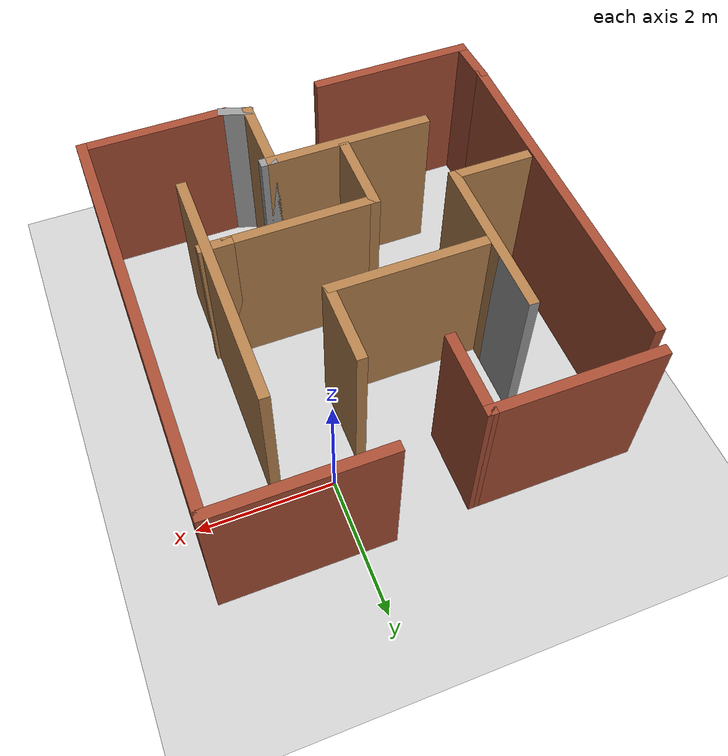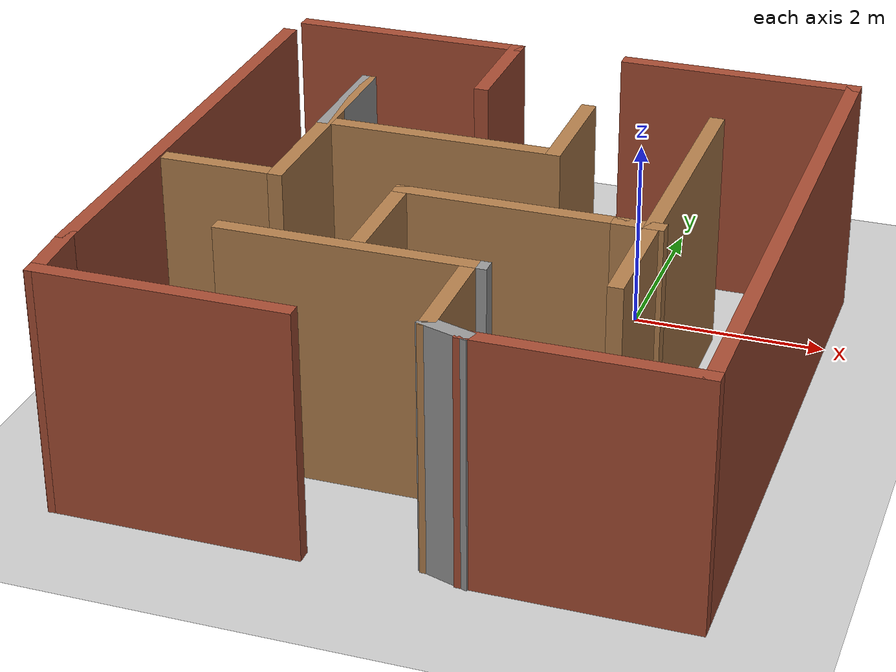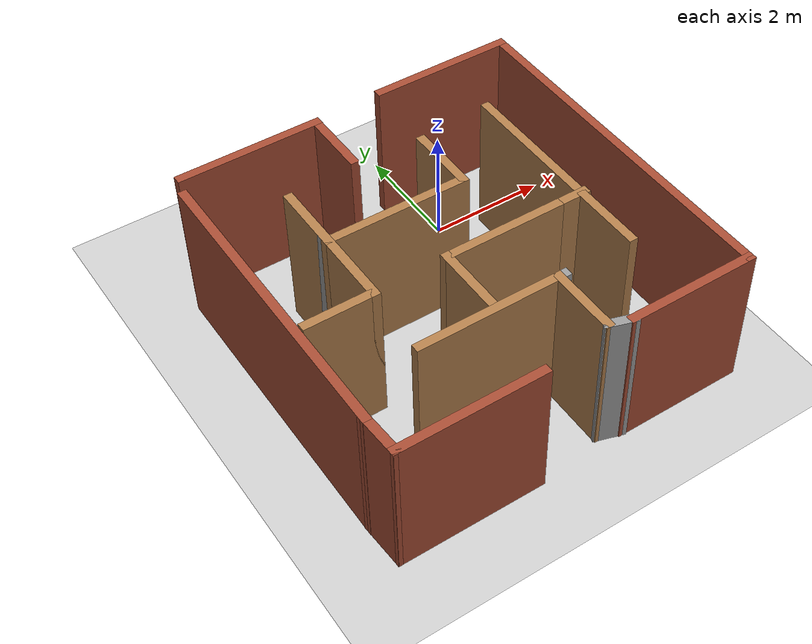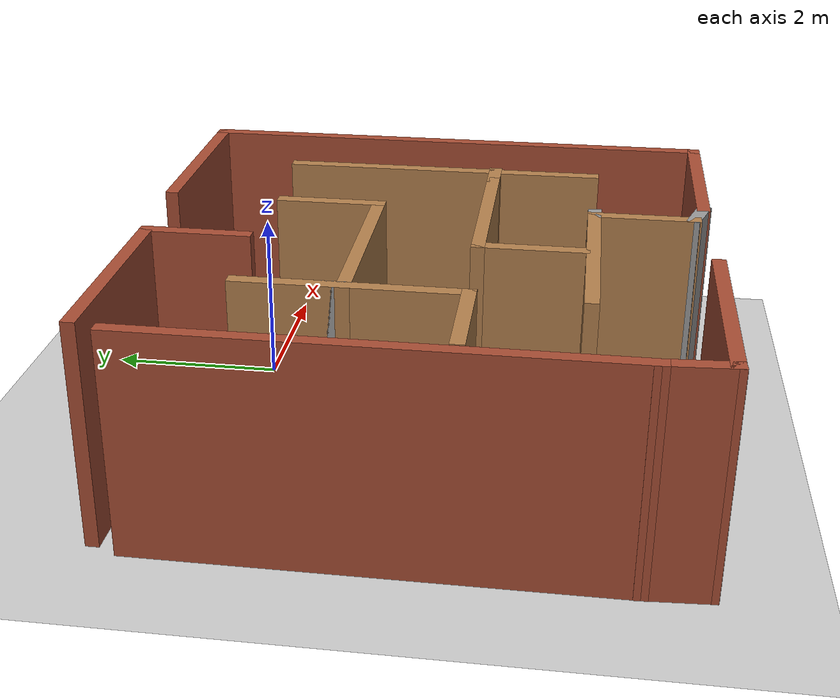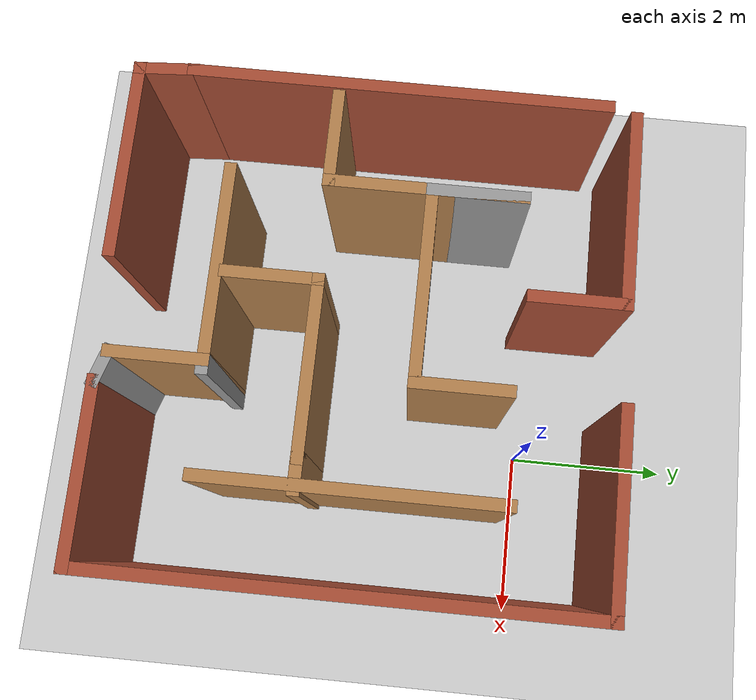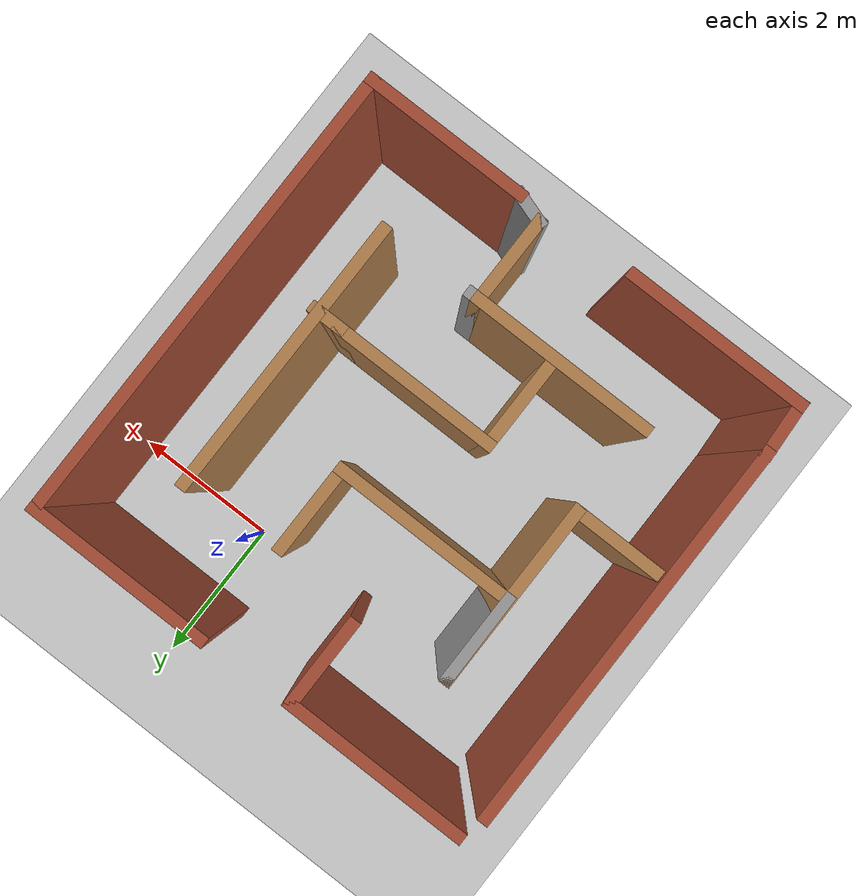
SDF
<sdf version="1.7">
 <world name="default">
  <light name="sun" type="directional">
   <pose>0 0 10 0 -0 0</pose>
   <diffuse>0.8 0.8 0.8 1</diffuse>
   <specular>0.2 0.2 0.2 1</specular>
   <attenuation>
    <range>1000</range>
    <constant>0.9</constant>
    <linear>0.01</linear>
    <quadratic>0.001</quadratic>
   </attenuation>
   <direction>-0.5 0.1 -0.9</direction>
   <spot><inner_angle>0</inner_angle><outer_angle>0</outer_angle><falloff>0</falloff></spot>
  </light>
  <model name="ground_plane">
   <static>1</static>
   <link name="link">
    <collision name="collision">
     <geometry><plane><normal>0 0 1</normal><size>100 100</size></plane></geometry>
     <surface><friction><ode><mu>100</mu><mu2>50</mu2></ode></friction></surface>
    </collision>
    <visual name="visual">
     <cast_shadows>0</cast_shadows>
     <geometry><plane><normal>0 0 1</normal><size>100 100</size></plane></geometry>
     <material>
      <script><uri>file://media/materials/scripts/gazebo.material</uri><name>Gazebo/Grey</name></script>
     </material>
    </visual>
   </link>
  </model>
  <gravity>0 0 -9.8</gravity>
  <magnetic_field>6e-06 2.3e-05 -4.2e-05</magnetic_field>
  <atmosphere type="adiabatic"/>
  <physics type="ode">
   <max_step_size>0.001</max_step_size>
   <real_time_factor>1</real_time_factor>
   <real_time_update_rate>1000</real_time_update_rate>
  </physics>
  <scene><ambient>0.4 0.4 0.4 1</ambient><background>0.7 0.7 0.7 1</background><shadows>1</shadows></scene>
  <audio><device>default</device></audio>
  <spherical_coordinates>
   <surface_model>EARTH_WGS84</surface_model>
   <latitude_deg>0</latitude_deg>
   <longitude_deg>0</longitude_deg>
   <elevation>0</elevation>
   <heading_deg>0</heading_deg>
  </spherical_coordinates>
  <model name="maze">
   <pose>-1.09185 -2.071 0 0 -0 0</pose>
   <link name="Wall_0">
    <collision name="Wall_0_Collision">
     <geometry><box><size>5.25 0.15 2.5</size></box></geometry>
     <pose>0 0 1.25 0 -0 0</pose>
    </collision>
    <visual name="Wall_0_Visual">
     <pose>0 0 1.25 0 -0 0</pose>
     <geometry><box><size>5.25 0.15 2.5</size></box></geometry>
     <material>
      <script><uri>file://media/materials/scripts/gazebo.material</uri><name>Gazebo/Bricks</name></script>
      <ambient>1 1 1 1</ambient>
     </material>
     <meta><layer>0</layer></meta>
    </visual>
    <pose>-3.02245 0.130056 0 0 -0 -1.5708</pose>
   </link>
   <link name="Wall_11">
    <collision name="Wall_11_Collision">
     <geometry><box><size>2.25 0.15 2.5</size></box></geometry>
     <pose>0 0 1.25 0 -0 0</pose>
    </collision>
    <visual name="Wall_11_Visual">
     <pose>0 0 1.25 0 -0 0</pose>
     <geometry><box><size>2.25 0.15 2.5</size></box></geometry>
     <material>
      <script><uri>file://media/materials/scripts/gazebo.material</uri><name>Gazebo/Wood</name></script>
      <ambient>1 1 1 1</ambient>
     </material>
     <meta><layer>0</layer></meta>
    </visual>
    <pose>0.537546 -0.589944 0 0 -0 0</pose>
   </link>
   <link name="Wall_12">
    <collision name="Wall_12_Collision">
     <geometry><box><size>0.5 0.15 2.5</size></box></geometry>
     <pose>0 0 1.25 0 -0 0</pose>
    </collision>
    <visual name="Wall_12_Visual">
     <pose>0 0 1.25 0 -0 0</pose>
     <geometry><box><size>0.5 0.15 2.5</size></box></geometry>
     <material>
      <script><uri>file://media/materials/scripts/gazebo.material</uri><name>Gazebo/Wood</name></script>
      <ambient>1 1 1 1</ambient>
     </material>
     <meta><layer>0</layer></meta>
    </visual>
    <pose>1.76255 -0.589944 0 0 -0 0</pose>
   </link>
   <link name="Wall_14">
    <collision name="Wall_14_Collision">
     <geometry><box><size>2.5 0.15 2.5</size></box></geometry>
     <pose>0 0 1.25 0 -0 0</pose>
    </collision>
    <visual name="Wall_14_Visual">
     <pose>0 0 1.25 0 -0 0</pose>
     <geometry><box><size>2.5 0.15 2.5</size></box></geometry>
     <material>
      <script><uri>file://media/materials/scripts/gazebo.material</uri><name>Gazebo/Wood</name></script>
      <ambient>1 1 1 1</ambient>
     </material>
     <meta><layer>0</layer></meta>
    </visual>
    <pose>-0.607454 -1.79994 0 0 -0 0</pose>
   </link>
   <link name="Wall_16">
    <collision name="Wall_16_Collision">
     <geometry><box><size>0.25 0.15 2.5</size></box></geometry>
     <pose>0 0 1.25 0 -0 0</pose>
    </collision>
    <visual name="Wall_16_Visual">
     <pose>0 0 1.25 0 -0 0</pose>
     <geometry><box><size>0.25 0.15 2.5</size></box></geometry>
     <material>
      <script><uri>file://media/materials/scripts/gazebo.material</uri><name>Gazebo/Grey</name></script>
      <ambient>1 1 1 1</ambient>
     </material>
     <meta><layer>0</layer></meta>
    </visual>
    <pose>0.617546 -1.79994 0 0 -0 0</pose>
   </link>
   <link name="Wall_18">
    <collision name="Wall_18_Collision">
     <geometry><box><size>1.25 0.15 2.5</size></box></geometry>
     <pose>0 0 1.25 0 -0 0</pose>
    </collision>
    <visual name="Wall_18_Visual">
     <pose>0 0 1.25 0 -0 0</pose>
     <geometry><box><size>1.25 0.15 2.5</size></box></geometry>
     <material>
      <script><uri>file://media/materials/scripts/gazebo.material</uri><name>Gazebo/Wood</name></script>
      <ambient>1 1 1 1</ambient>
     </material>
     <meta><layer>0</layer></meta>
    </visual>
    <pose>-0.512454 -1.13994 0 0 -0 -1.5708</pose>
   </link>
   <link name="Wall_2">
    <collision name="Wall_2_Collision">
     <geometry><box><size>1.25 0.15 2.5</size></box></geometry>
     <pose>0 0 1.25 0 -0 0</pose>
    </collision>
    <visual name="Wall_2_Visual">
     <pose>0 0 1.25 0 -0 0</pose>
     <geometry><box><size>1.25 0.15 2.5</size></box></geometry>
     <material>
      <script><uri>file://media/materials/scripts/gazebo.material</uri><name>Gazebo/Wood</name></script>
      <ambient>1 1 1 1</ambient>
     </material>
     <meta><layer>0</layer></meta>
    </visual>
    <pose>-2.30245 -0.609944 0 0 -0 0</pose>
   </link>
   <link name="Wall_22">
    <collision name="Wall_22_Collision">
     <geometry><box><size>2.5 0.15 2.5</size></box></geometry>
     <pose>0 0 1.25 0 -0 0</pose>
    </collision>
    <visual name="Wall_22_Visual">
     <pose>0 0 1.25 0 -0 0</pose>
     <geometry><box><size>2.5 0.15 2.5</size></box></geometry>
     <material>
      <script><uri>file://media/materials/scripts/gazebo.material</uri><name>Gazebo/Bricks</name></script>
      <ambient>1 1 1 1</ambient>
     </material>
     <meta><layer>0</layer></meta>
    </visual>
    <pose>-1.72781 3.02504 0 0 -0 0</pose>
   </link>
   <link name="Wall_23">
    <collision name="Wall_23_Collision">
     <geometry><box><size>1.25 0.15 2.5</size></box></geometry>
     <pose>0 0 1.25 0 -0 0</pose>
    </collision>
    <visual name="Wall_23_Visual">
     <pose>0 0 1.25 0 -0 0</pose>
     <geometry><box><size>1.25 0.15 2.5</size></box></geometry>
     <material>
      <script><uri>file://media/materials/scripts/gazebo.material</uri><name>Gazebo/Bricks</name></script>
      <ambient>1 1 1 1</ambient>
     </material>
     <meta><layer>0</layer></meta>
    </visual>
    <pose>-0.552811 2.47504 0 0 -0 -1.5708</pose>
   </link>
   <link name="Wall_25">
    <collision name="Wall_25_Collision">
     <geometry><box><size>2.5 0.15 2.5</size></box></geometry>
     <pose>0 0 1.25 0 -0 0</pose>
    </collision>
    <visual name="Wall_25_Visual">
     <pose>0 0 1.25 0 -0 0</pose>
     <geometry><box><size>2.5 0.15 2.5</size></box></geometry>
     <material>
      <script><uri>file://media/materials/scripts/gazebo.material</uri><name>Gazebo/Bricks</name></script>
      <ambient>1 1 1 1</ambient>
     </material>
     <meta><layer>0</layer></meta>
    </visual>
    <pose>1.85186 3.0847 0 0 -0 0</pose>
   </link>
   <link name="Wall_26">
    <collision name="Wall_26_Collision">
     <geometry><box><size>6.25 0.15 2.5</size></box></geometry>
     <pose>0 0 1.25 0 -0 0</pose>
    </collision>
    <visual name="Wall_26_Visual">
     <pose>0 0 1.25 0 -0 0</pose>
     <geometry><box><size>6.25 0.15 2.5</size></box></geometry>
     <material>
      <script><uri>file://media/materials/scripts/gazebo.material</uri><name>Gazebo/Bricks</name></script>
      <ambient>1 1 1 1</ambient>
     </material>
     <meta><layer>0</layer></meta>
    </visual>
    <pose>3.02686 0.034699 0 0 -0 -1.5708</pose>
   </link>
   <link name="Wall_27">
    <collision name="Wall_27_Collision">
     <geometry><box><size>2.25 0.15 2.5</size></box></geometry>
     <pose>0 0 1.25 0 -0 0</pose>
    </collision>
    <visual name="Wall_27_Visual">
     <pose>0 0 1.25 0 -0 0</pose>
     <geometry><box><size>2.25 0.15 2.5</size></box></geometry>
     <material>
      <script><uri>file://media/materials/scripts/gazebo.material</uri><name>Gazebo/Bricks</name></script>
      <ambient>1 1 1 1</ambient>
     </material>
     <meta><layer>0</layer></meta>
    </visual>
    <pose>1.97686 -3.0153 0 0 -0 3.14159</pose>
   </link>
   <link name="Wall_29">
    <collision name="Wall_29_Collision">
     <geometry><box><size>1.25 0.15 2.5</size></box></geometry>
     <pose>0 0 1.25 0 -0 0</pose>
    </collision>
    <visual name="Wall_29_Visual">
     <pose>0 0 1.25 0 -0 0</pose>
     <geometry><box><size>1.25 0.15 2.5</size></box></geometry>
     <material>
      <script><uri>file://media/materials/scripts/gazebo.material</uri><name>Gazebo/Wood</name></script>
      <ambient>1 1 1 1</ambient>
     </material>
     <meta><layer>0</layer></meta>
    </visual>
    <pose>0.567546 -2.34994 0 0 -0 -1.5708</pose>
   </link>
   <link name="Wall_3">
    <collision name="Wall_3_Collision">
     <geometry><box><size>2.5 0.15 2.5</size></box></geometry>
     <pose>0 0 1.25 0 -0 0</pose>
    </collision>
    <visual name="Wall_3_Visual">
     <pose>0 0 1.25 0 -0 0</pose>
     <geometry><box><size>2.5 0.15 2.5</size></box></geometry>
     <material>
      <script><uri>file://media/materials/scripts/gazebo.material</uri><name>Gazebo/Wood</name></script>
      <ambient>1 1 1 1</ambient>
     </material>
     <meta><layer>0</layer></meta>
    </visual>
    <pose>-1.75245 0.565056 0 0 -0 1.5708</pose>
   </link>
   <link name="Wall_30">
    <collision name="Wall_30_Collision">
     <geometry><box><size>0.527379 0.15 2.5</size></box></geometry>
     <pose>0 0 1.25 0 -0 0</pose>
    </collision>
    <visual name="Wall_30_Visual">
     <pose>0 0 1.25 0 -0 0</pose>
     <geometry><box><size>0.527379 0.15 2.5</size></box></geometry>
     <material>
      <script><uri>file://media/materials/scripts/gazebo.material</uri><name>Gazebo/Grey</name></script>
      <ambient>1 1 1 1</ambient>
     </material>
     <meta><layer>0</layer></meta>
    </visual>
    <pose>0.747204 -2.95762 0 0 -0 -0.310652</pose>
   </link>
   <link name="Wall_33">
    <collision name="Wall_33_Collision">
     <geometry><box><size>2.5 0.15 2.5</size></box></geometry>
     <pose>0 0 1.25 0 -0 0</pose>
    </collision>
    <visual name="Wall_33_Visual">
     <pose>0 0 1.25 0 -0 0</pose>
     <geometry><box><size>2.5 0.15 2.5</size></box></geometry>
     <material>
      <script><uri>file://media/materials/scripts/gazebo.material</uri><name>Gazebo/Bricks</name></script>
      <ambient>1 1 1 1</ambient>
     </material>
     <meta><layer>0</layer></meta>
    </visual>
    <pose>-1.80736 -3.08029 0 0 -0 0</pose>
   </link>
   <link name="Wall_35">
    <collision name="Wall_35_Collision">
     <geometry><box><size>0.811565 0.15 2.5</size></box></geometry>
     <pose>0 0 1.25 0 -0 0</pose>
    </collision>
    <visual name="Wall_35_Visual">
     <pose>0 0 1.25 0 -0 0</pose>
     <geometry><box><size>0.811565 0.15 2.5</size></box></geometry>
     <material>
      <script><uri>file://media/materials/scripts/gazebo.material</uri><name>Gazebo/Bricks</name></script>
      <ambient>1 1 1 1</ambient>
     </material>
     <meta><layer>0</layer></meta>
    </visual>
    <pose>-3.00241 -2.75012 0 0 -0 -1.51015</pose>
   </link>
   <link name="Wall_4">
    <collision name="Wall_4_Collision">
     <geometry><box><size>1.25 0.15 2.5</size></box></geometry>
     <pose>0 0 1.25 0 -0 0</pose>
    </collision>
    <visual name="Wall_4_Visual">
     <pose>0 0 1.25 0 -0 0</pose>
     <geometry><box><size>1.25 0.15 2.5</size></box></geometry>
     <material>
      <script><uri>file://media/materials/scripts/gazebo.material</uri><name>Gazebo/Grey</name></script>
      <ambient>1 1 1 1</ambient>
     </material>
     <meta><layer>0</layer></meta>
    </visual>
    <pose>-1.75245 1.19006 0 0 -0 -1.5708</pose>
   </link>
   <link name="Wall_5">
    <collision name="Wall_5_Collision">
     <geometry><box><size>2.5 0.15 2.5</size></box></geometry>
     <pose>0 0 1.25 0 -0 0</pose>
    </collision>
    <visual name="Wall_5_Visual">
     <pose>0 0 1.25 0 -0 0</pose>
     <geometry><box><size>2.5 0.15 2.5</size></box></geometry>
     <material>
      <script><uri>file://media/materials/scripts/gazebo.material</uri><name>Gazebo/Wood</name></script>
      <ambient>1 1 1 1</ambient>
     </material>
     <meta><layer>0</layer></meta>
    </visual>
    <pose>-0.577454 0.640056 0 0 -0 0</pose>
   </link>
   <link name="Wall_6">
    <collision name="Wall_6_Collision">
     <geometry><box><size>1.25 0.15 2.5</size></box></geometry>
     <pose>0 0 1.25 0 -0 0</pose>
    </collision>
    <visual name="Wall_6_Visual">
     <pose>0 0 1.25 0 -0 0</pose>
     <geometry><box><size>1.25 0.15 2.5</size></box></geometry>
     <material>
      <script><uri>file://media/materials/scripts/gazebo.material</uri><name>Gazebo/Wood</name></script>
      <ambient>1 1 1 1</ambient>
     </material>
     <meta><layer>0</layer></meta>
    </visual>
    <pose>0.597546 1.19006 0 0 -0 1.5708</pose>
   </link>
   <link name="Wall_9">
    <collision name="Wall_9_Collision">
     <geometry><box><size>3.75 0.15 2.5</size></box></geometry>
     <pose>0 0 1.25 0 -0 0</pose>
    </collision>
    <visual name="Wall_9_Visual">
     <pose>0 0 1.25 0 -0 0</pose>
     <geometry><box><size>3.75 0.15 2.5</size></box></geometry>
     <material>
      <script><uri>file://media/materials/scripts/gazebo.material</uri><name>Gazebo/Wood</name></script>
      <ambient>1 1 1 1</ambient>
     </material>
     <meta><layer>0</layer></meta>
    </visual>
    <pose>1.88755 0.040056 0 0 -0 -1.5708</pose>
   </link>
   <static>1</static>
  </model>
 </world>
</sdf>
